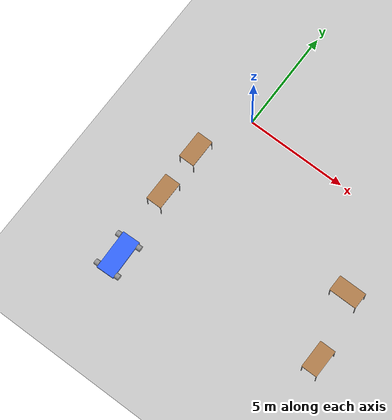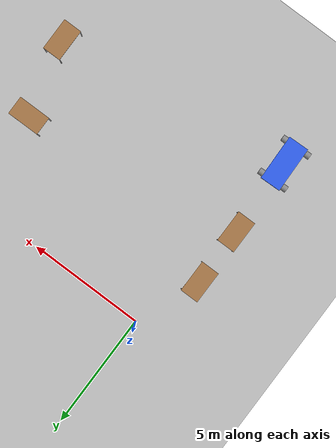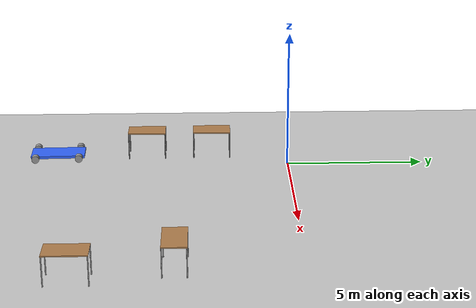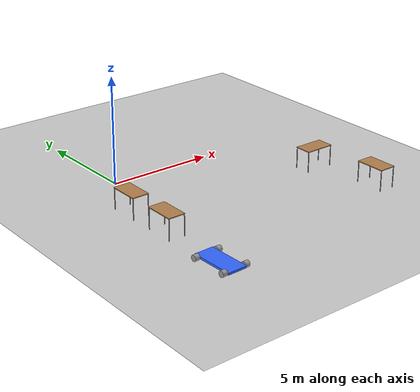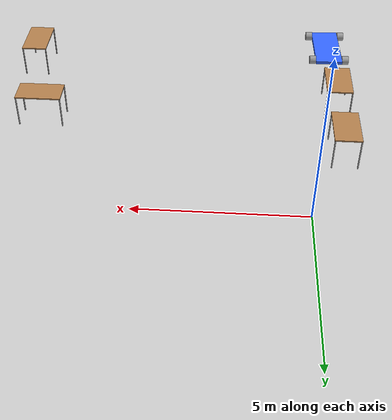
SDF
<sdf version="1.6">
 <world name="default">
  <model name="ground_plane">
   <static>1</static>
   <link name="link">
    <collision name="collision">
     <geometry><plane><normal>0 0 1</normal><size>100 100</size></plane></geometry>
     <surface><friction><ode><mu>100</mu><mu2>50</mu2></ode></friction></surface>
    </collision>
    <visual name="visual">
     <cast_shadows>0</cast_shadows>
     <geometry><plane><normal>0 0 1</normal><size>100 100</size></plane></geometry>
     <material>
      <script><uri>file://media/materials/scripts/gazebo.material</uri><name>Gazebo/Grey</name></script>
     </material>
    </visual>
   </link>
  </model>
  <model name="table_0_clone_0_clone_0_clone_0">
   <static>0</static>
   <link name="link">
    <collision name="surface">
     <pose>0 0 1 0 -0 0</pose>
     <geometry><box><size>1.5 0.8 0.03</size></box></geometry>
     <surface><friction><ode><mu>0.6</mu><mu2>0.6</mu2></ode></friction></surface>
    </collision>
    <visual name="visual1">
     <pose>0 0 1 0 -0 0</pose>
     <geometry><box><size>1.4 0.8 0.04</size></box></geometry>
     <material>
      <script><uri>file://media/materials/scripts/gazebo.material</uri><name>Gazebo/Wood</name></script>
     </material>
    </visual>
    <collision name="front_left_leg">
     <pose>0.68 0.38 0.5 0 -0 0</pose>
     <geometry><cylinder><radius>0.02</radius><length>1</length></cylinder></geometry>
    </collision>
    <visual name="front_left_leg">
     <pose>0.68 0.38 0.5 0 -0 0</pose>
     <geometry><cylinder><radius>0.02</radius><length>1</length></cylinder></geometry>
     <material>
      <script><uri>file://media/materials/scripts/gazebo.material</uri><name>Gazebo/Grey</name></script>
     </material>
    </visual>
    <collision name="front_right_leg">
     <pose>0.68 -0.38 0.5 0 -0 0</pose>
     <geometry><cylinder><radius>0.02</radius><length>1</length></cylinder></geometry>
    </collision>
    <visual name="front_right_leg">
     <pose>0.68 -0.38 0.5 0 -0 0</pose>
     <geometry><cylinder><radius>0.02</radius><length>1</length></cylinder></geometry>
     <material>
      <script><uri>file://media/materials/scripts/gazebo.material</uri><name>Gazebo/Grey</name></script>
     </material>
    </visual>
    <collision name="back_right_leg">
     <pose>-0.68 -0.38 0.5 0 -0 0</pose>
     <geometry><cylinder><radius>0.02</radius><length>1</length></cylinder></geometry>
    </collision>
    <visual name="back_right_leg">
     <pose>-0.68 -0.38 0.5 0 -0 0</pose>
     <geometry><cylinder><radius>0.02</radius><length>1</length></cylinder></geometry>
     <material>
      <script><uri>file://media/materials/scripts/gazebo.material</uri><name>Gazebo/Grey</name></script>
     </material>
    </visual>
    <collision name="back_left_leg">
     <pose>-0.68 0.38 0.5 0 -0 0</pose>
     <geometry><cylinder><radius>0.02</radius><length>1</length></cylinder></geometry>
    </collision>
    <visual name="back_left_leg">
     <pose>-0.68 0.38 0.5 0 -0 0</pose>
     <geometry><cylinder><radius>0.02</radius><length>1</length></cylinder></geometry>
     <material>
      <script><uri>file://media/materials/scripts/gazebo.material</uri><name>Gazebo/Grey</name></script>
     </material>
    </visual>
    <inertial>
     <inertia><ixx>1</ixx><ixy>0</ixy><ixz>0</ixz><iyy>1</iyy><iyz>0</iyz><izz>1</izz></inertia>
     <mass>1</mass>
    </inertial>
   </link>
   <pose>8.979 -7.20182 -7e-06 3e-06 2e-06 1.57</pose>
  </model>
  <model name="table_3_clone_clone_clone_0">
   <static>0</static>
   <link name="link">
    <collision name="surface">
     <pose>0 0 1 0 -0 0</pose>
     <geometry><box><size>1.5 0.8 0.03</size></box></geometry>
     <surface><friction><ode><mu>0.6</mu><mu2>0.6</mu2></ode></friction></surface>
    </collision>
    <visual name="visual1">
     <pose>0 0 1 0 -0 0</pose>
     <geometry><box><size>1.4 0.8 0.04</size></box></geometry>
     <material>
      <script><uri>file://media/materials/scripts/gazebo.material</uri><name>Gazebo/Wood</name></script>
     </material>
    </visual>
    <collision name="front_left_leg">
     <pose>0.68 0.38 0.5 0 -0 0</pose>
     <geometry><cylinder><radius>0.02</radius><length>1</length></cylinder></geometry>
    </collision>
    <visual name="front_left_leg">
     <pose>0.68 0.38 0.5 0 -0 0</pose>
     <geometry><cylinder><radius>0.02</radius><length>1</length></cylinder></geometry>
     <material>
      <script><uri>file://media/materials/scripts/gazebo.material</uri><name>Gazebo/Grey</name></script>
     </material>
    </visual>
    <collision name="front_right_leg">
     <pose>0.68 -0.38 0.5 0 -0 0</pose>
     <geometry><cylinder><radius>0.02</radius><length>1</length></cylinder></geometry>
    </collision>
    <visual name="front_right_leg">
     <pose>0.68 -0.38 0.5 0 -0 0</pose>
     <geometry><cylinder><radius>0.02</radius><length>1</length></cylinder></geometry>
     <material>
      <script><uri>file://media/materials/scripts/gazebo.material</uri><name>Gazebo/Grey</name></script>
     </material>
    </visual>
    <collision name="back_right_leg">
     <pose>-0.68 -0.38 0.5 0 -0 0</pose>
     <geometry><cylinder><radius>0.02</radius><length>1</length></cylinder></geometry>
    </collision>
    <visual name="back_right_leg">
     <pose>-0.68 -0.38 0.5 0 -0 0</pose>
     <geometry><cylinder><radius>0.02</radius><length>1</length></cylinder></geometry>
     <material>
      <script><uri>file://media/materials/scripts/gazebo.material</uri><name>Gazebo/Grey</name></script>
     </material>
    </visual>
    <collision name="back_left_leg">
     <pose>-0.68 0.38 0.5 0 -0 0</pose>
     <geometry><cylinder><radius>0.02</radius><length>1</length></cylinder></geometry>
    </collision>
    <visual name="back_left_leg">
     <pose>-0.68 0.38 0.5 0 -0 0</pose>
     <geometry><cylinder><radius>0.02</radius><length>1</length></cylinder></geometry>
     <material>
      <script><uri>file://media/materials/scripts/gazebo.material</uri><name>Gazebo/Grey</name></script>
     </material>
    </visual>
    <inertial>
     <inertia><ixx>1</ixx><ixy>0</ixy><ixz>0</ixz><iyy>1</iyy><iyz>0</iyz><izz>1</izz></inertia>
     <mass>1</mass>
    </inertial>
   </link>
   <pose>-1.06808 -2.82716 -1e-06 -0 -1e-06 1.57001</pose>
  </model>
  <model name="table_3_clone_clone_clone_0_clone">
   <static>0</static>
   <link name="link">
    <collision name="surface">
     <pose>0 0 1 0 -0 0</pose>
     <geometry><box><size>1.5 0.8 0.03</size></box></geometry>
     <surface><friction><ode><mu>0.6</mu><mu2>0.6</mu2></ode></friction></surface>
    </collision>
    <visual name="visual1">
     <pose>0 0 1 0 -0 0</pose>
     <geometry><box><size>1.4 0.8 0.04</size></box></geometry>
     <material>
      <script><uri>file://media/materials/scripts/gazebo.material</uri><name>Gazebo/Wood</name></script>
     </material>
    </visual>
    <collision name="front_left_leg">
     <pose>0.68 0.38 0.5 0 -0 0</pose>
     <geometry><cylinder><radius>0.02</radius><length>1</length></cylinder></geometry>
    </collision>
    <visual name="front_left_leg">
     <pose>0.68 0.38 0.5 0 -0 0</pose>
     <geometry><cylinder><radius>0.02</radius><length>1</length></cylinder></geometry>
     <material>
      <script><uri>file://media/materials/scripts/gazebo.material</uri><name>Gazebo/Grey</name></script>
     </material>
    </visual>
    <collision name="front_right_leg">
     <pose>0.68 -0.38 0.5 0 -0 0</pose>
     <geometry><cylinder><radius>0.02</radius><length>1</length></cylinder></geometry>
    </collision>
    <visual name="front_right_leg">
     <pose>0.68 -0.38 0.5 0 -0 0</pose>
     <geometry><cylinder><radius>0.02</radius><length>1</length></cylinder></geometry>
     <material>
      <script><uri>file://media/materials/scripts/gazebo.material</uri><name>Gazebo/Grey</name></script>
     </material>
    </visual>
    <collision name="back_right_leg">
     <pose>-0.68 -0.38 0.5 0 -0 0</pose>
     <geometry><cylinder><radius>0.02</radius><length>1</length></cylinder></geometry>
    </collision>
    <visual name="back_right_leg">
     <pose>-0.68 -0.38 0.5 0 -0 0</pose>
     <geometry><cylinder><radius>0.02</radius><length>1</length></cylinder></geometry>
     <material>
      <script><uri>file://media/materials/scripts/gazebo.material</uri><name>Gazebo/Grey</name></script>
     </material>
    </visual>
    <collision name="back_left_leg">
     <pose>-0.68 0.38 0.5 0 -0 0</pose>
     <geometry><cylinder><radius>0.02</radius><length>1</length></cylinder></geometry>
    </collision>
    <visual name="back_left_leg">
     <pose>-0.68 0.38 0.5 0 -0 0</pose>
     <geometry><cylinder><radius>0.02</radius><length>1</length></cylinder></geometry>
     <material>
      <script><uri>file://media/materials/scripts/gazebo.material</uri><name>Gazebo/Grey</name></script>
     </material>
    </visual>
    <inertial>
     <inertia><ixx>1</ixx><ixy>0</ixy><ixz>0</ixz><iyy>1</iyy><iyz>0</iyz><izz>1</izz></inertia>
     <mass>1</mass>
    </inertial>
   </link>
   <pose>-1.03399 -5.26338 -1e-06 -0 -1e-06 1.57001</pose>
  </model>
  <model name="table_1_clone_0">
   <static>0</static>
   <link name="link">
    <collision name="surface">
     <pose>0 0 1 0 -0 0</pose>
     <geometry><box><size>1.5 0.8 0.03</size></box></geometry>
     <surface><friction><ode><mu>0.6</mu><mu2>0.6</mu2></ode></friction></surface>
    </collision>
    <visual name="visual1">
     <pose>0 0 1 0 -0 0</pose>
     <geometry><box><size>1.4 0.8 0.04</size></box></geometry>
     <material>
      <script><uri>file://media/materials/scripts/gazebo.material</uri><name>Gazebo/Wood</name></script>
     </material>
    </visual>
    <collision name="front_left_leg">
     <pose>0.68 0.38 0.5 0 -0 0</pose>
     <geometry><cylinder><radius>0.02</radius><length>1</length></cylinder></geometry>
    </collision>
    <visual name="front_left_leg">
     <pose>0.68 0.38 0.5 0 -0 0</pose>
     <geometry><cylinder><radius>0.02</radius><length>1</length></cylinder></geometry>
     <material>
      <script><uri>file://media/materials/scripts/gazebo.material</uri><name>Gazebo/Grey</name></script>
     </material>
    </visual>
    <collision name="front_right_leg">
     <pose>0.68 -0.38 0.5 0 -0 0</pose>
     <geometry><cylinder><radius>0.02</radius><length>1</length></cylinder></geometry>
    </collision>
    <visual name="front_right_leg">
     <pose>0.68 -0.38 0.5 0 -0 0</pose>
     <geometry><cylinder><radius>0.02</radius><length>1</length></cylinder></geometry>
     <material>
      <script><uri>file://media/materials/scripts/gazebo.material</uri><name>Gazebo/Grey</name></script>
     </material>
    </visual>
    <collision name="back_right_leg">
     <pose>-0.68 -0.38 0.5 0 -0 0</pose>
     <geometry><cylinder><radius>0.02</radius><length>1</length></cylinder></geometry>
    </collision>
    <visual name="back_right_leg">
     <pose>-0.68 -0.38 0.5 0 -0 0</pose>
     <geometry><cylinder><radius>0.02</radius><length>1</length></cylinder></geometry>
     <material>
      <script><uri>file://media/materials/scripts/gazebo.material</uri><name>Gazebo/Grey</name></script>
     </material>
    </visual>
    <collision name="back_left_leg">
     <pose>-0.68 0.38 0.5 0 -0 0</pose>
     <geometry><cylinder><radius>0.02</radius><length>1</length></cylinder></geometry>
    </collision>
    <visual name="back_left_leg">
     <pose>-0.68 0.38 0.5 0 -0 0</pose>
     <geometry><cylinder><radius>0.02</radius><length>1</length></cylinder></geometry>
     <material>
      <script><uri>file://media/materials/scripts/gazebo.material</uri><name>Gazebo/Grey</name></script>
     </material>
    </visual>
    <inertial>
     <inertia><ixx>1</ixx><ixy>0</ixy><ixz>0</ixz><iyy>1</iyy><iyz>0</iyz><izz>1</izz></inertia>
     <mass>1</mass>
    </inertial>
   </link>
   <pose>8.23817 -4.02749 -1e-06 0 1e-06 0</pose>
  </model>
  <model name="gokart_3">
   <link name="link_0">
    <pose>1e-06 -0.118472 -0 -0 -0 -0</pose>
    <inertial>
     <mass>1.59387</mass>
     <inertia>
      <ixx>0.470249</ixx>
      <ixy>0</ixy>
      <ixz>0</ixz>
      <iyy>0.265646</iyy>
      <iyz>0</iyz>
      <izz>0.470249</izz>
     </inertia>
    </inertial>
    <visual name="visual">
     <geometry><box><size>2 0.9 0.1</size></box></geometry>
     <material>
      <lighting>1</lighting>
      <script><uri>file://media/materials/scripts/gazebo.material</uri><name>Gazebo/Grey</name></script>
      <ambient>0.2 0.4 1 1</ambient>
      <diffuse>0.2 0.4 1 1</diffuse>
      <specular>0.01 0.01 0.01 1</specular>
      <emissive>0 0 0 1</emissive>
      <shader type="vertex"><normal_map>__default__</normal_map></shader>
     </material>
    </visual>
    <collision name="collision">
     <geometry><box><size>2 0.9 0.1</size></box></geometry>
     <surface>
      <friction>
       <ode><mu>1</mu><mu2>1</mu2><fdir1>0 0 0</fdir1><slip1>0</slip1><slip2>0</slip2></ode>
       <torsional>
        <coefficient>1</coefficient>
        <patch_radius>0</patch_radius>
        <surface_radius>0</surface_radius>
        <use_patch_radius>1</use_patch_radius>
        <ode><slip>0</slip></ode>
       </torsional>
      </friction>
      <bounce><restitution_coefficient>0</restitution_coefficient><threshold>1e+06</threshold></bounce>
      <contact>
       <collide_without_contact>0</collide_without_contact>
       <collide_without_contact_bitmask>1</collide_without_contact_bitmask>
       <collide_bitmask>1</collide_bitmask>
       <ode>
        <soft_cfm>0</soft_cfm>
        <soft_erp>0.2</soft_erp>
        <kp>1e+13</kp>
        <kd>1</kd>
        <max_vel>0.01</max_vel>
        <min_depth>0</min_depth>
       </ode>
       <bullet>
        <split_impulse>1</split_impulse>
        <split_impulse_penetration_threshold>-0.01</split_impulse_penetration_threshold>
        <soft_cfm>0</soft_cfm>
        <soft_erp>0.2</soft_erp>
        <kp>1e+13</kp>
        <kd>1</kd>
       </bullet>
      </contact>
     </surface>
    </collision>
   </link>
   <link name="link_1">
    <pose>-0.81362 -0.678506 9e-06 1.5707 -0 0</pose>
    <inertial>
     <mass>1</mass>
     <inertia><ixx>0.145833</ixx><ixy>0</ixy><ixz>0</ixz><iyy>0.145833</iyy><iyz>0</iyz><izz>0.125</izz></inertia>
    </inertial>
    <visual name="visual">
     <geometry><cylinder><radius>0.14</radius><length>0.22</length></cylinder></geometry>
     <material>
      <lighting>1</lighting>
      <script><uri>file://media/materials/scripts/gazebo.material</uri><name>Gazebo/Grey</name></script>
      <ambient>0.1 0.1 0.1 1</ambient>
      <diffuse>0.1 0.1 0.1 1</diffuse>
      <specular>0.01 0.01 0.01 1</specular>
      <emissive>0 0 0 1</emissive>
      <shader type="vertex"><normal_map>__default__</normal_map></shader>
     </material>
    </visual>
    <collision name="collision">
     <geometry><cylinder><radius>0.14</radius><length>0.22</length></cylinder></geometry>
     <surface>
      <friction>
       <ode><mu>1</mu><mu2>1</mu2><fdir1>0 0 0</fdir1><slip1>0</slip1><slip2>0</slip2></ode>
       <torsional>
        <coefficient>1</coefficient>
        <patch_radius>0</patch_radius>
        <surface_radius>0</surface_radius>
        <use_patch_radius>1</use_patch_radius>
        <ode><slip>0</slip></ode>
       </torsional>
      </friction>
      <bounce><restitution_coefficient>0</restitution_coefficient><threshold>1e+06</threshold></bounce>
      <contact>
       <collide_without_contact>0</collide_without_contact>
       <collide_without_contact_bitmask>1</collide_without_contact_bitmask>
       <collide_bitmask>1</collide_bitmask>
       <ode>
        <soft_cfm>0</soft_cfm>
        <soft_erp>0.2</soft_erp>
        <kp>1e+13</kp>
        <kd>1</kd>
        <max_vel>0.01</max_vel>
        <min_depth>0</min_depth>
       </ode>
       <bullet>
        <split_impulse>1</split_impulse>
        <split_impulse_penetration_threshold>-0.01</split_impulse_penetration_threshold>
        <soft_cfm>0</soft_cfm>
        <soft_erp>0.2</soft_erp>
        <kp>1e+13</kp>
        <kd>1</kd>
       </bullet>
      </contact>
     </surface>
    </collision>
   </link>
   <link name="link_1_clone">
    <pose>-0.813633 0.441545 0 1.5707 -0 0</pose>
    <inertial>
     <mass>1</mass>
     <inertia><ixx>0.145833</ixx><ixy>0</ixy><ixz>0</ixz><iyy>0.145833</iyy><iyz>0</iyz><izz>0.125</izz></inertia>
    </inertial>
    <visual name="visual">
     <geometry><cylinder><radius>0.14</radius><length>0.22</length></cylinder></geometry>
     <material>
      <lighting>1</lighting>
      <script><uri>file://media/materials/scripts/gazebo.material</uri><name>Gazebo/Grey</name></script>
      <ambient>0.1 0.1 0.1 1</ambient>
      <diffuse>0.1 0.1 0.1 1</diffuse>
      <specular>0.01 0.01 0.01 1</specular>
      <emissive>0 0 0 1</emissive>
      <shader type="vertex"><normal_map>__default__</normal_map></shader>
     </material>
    </visual>
    <collision name="collision">
     <geometry><cylinder><radius>0.14</radius><length>0.22</length></cylinder></geometry>
     <surface>
      <friction>
       <ode><mu>1</mu><mu2>1</mu2><fdir1>0 0 0</fdir1><slip1>0</slip1><slip2>0</slip2></ode>
       <torsional>
        <coefficient>1</coefficient>
        <patch_radius>0</patch_radius>
        <surface_radius>0</surface_radius>
        <use_patch_radius>1</use_patch_radius>
        <ode><slip>0</slip></ode>
       </torsional>
      </friction>
      <bounce><restitution_coefficient>0</restitution_coefficient><threshold>1e+06</threshold></bounce>
      <contact>
       <collide_without_contact>0</collide_without_contact>
       <collide_without_contact_bitmask>1</collide_without_contact_bitmask>
       <collide_bitmask>1</collide_bitmask>
       <ode>
        <soft_cfm>0</soft_cfm>
        <soft_erp>0.2</soft_erp>
        <kp>1e+13</kp>
        <kd>1</kd>
        <max_vel>0.01</max_vel>
        <min_depth>0</min_depth>
       </ode>
       <bullet>
        <split_impulse>1</split_impulse>
        <split_impulse_penetration_threshold>-0.01</split_impulse_penetration_threshold>
        <soft_cfm>0</soft_cfm>
        <soft_erp>0.2</soft_erp>
        <kp>1e+13</kp>
        <kd>1</kd>
       </bullet>
      </contact>
     </surface>
    </collision>
   </link>
   <link name="link_1_clone_0">
    <pose>0.8 -0.678488 6e-06 1.5707 1.1e-05 1.1e-05</pose>
    <inertial>
     <mass>1</mass>
     <inertia><ixx>0.145833</ixx><ixy>0</ixy><ixz>0</ixz><iyy>0.145833</iyy><iyz>0</iyz><izz>0.125</izz></inertia>
    </inertial>
    <visual name="visual">
     <geometry><cylinder><radius>0.14</radius><length>0.22</length></cylinder></geometry>
     <material>
      <lighting>1</lighting>
      <script><uri>file://media/materials/scripts/gazebo.material</uri><name>Gazebo/Grey</name></script>
      <ambient>0.1 0.1 0.1 1</ambient>
      <diffuse>0.1 0.1 0.1 1</diffuse>
      <specular>0.01 0.01 0.01 1</specular>
      <emissive>0 0 0 1</emissive>
      <shader type="vertex"><normal_map>__default__</normal_map></shader>
     </material>
    </visual>
    <collision name="collision">
     <geometry><cylinder><radius>0.14</radius><length>0.22</length></cylinder></geometry>
     <surface>
      <friction>
       <ode><mu>1</mu><mu2>1</mu2><fdir1>0 0 0</fdir1><slip1>0</slip1><slip2>0</slip2></ode>
       <torsional>
        <coefficient>1</coefficient>
        <patch_radius>0</patch_radius>
        <surface_radius>0</surface_radius>
        <use_patch_radius>1</use_patch_radius>
        <ode><slip>0</slip></ode>
       </torsional>
      </friction>
      <bounce><restitution_coefficient>0</restitution_coefficient><threshold>1e+06</threshold></bounce>
      <contact>
       <collide_without_contact>0</collide_without_contact>
       <collide_without_contact_bitmask>1</collide_without_contact_bitmask>
       <collide_bitmask>1</collide_bitmask>
       <ode>
        <soft_cfm>0</soft_cfm>
        <soft_erp>0.2</soft_erp>
        <kp>1e+13</kp>
        <kd>1</kd>
        <max_vel>0.01</max_vel>
        <min_depth>0</min_depth>
       </ode>
       <bullet>
        <split_impulse>1</split_impulse>
        <split_impulse_penetration_threshold>-0.01</split_impulse_penetration_threshold>
        <soft_cfm>0</soft_cfm>
        <soft_erp>0.2</soft_erp>
        <kp>1e+13</kp>
        <kd>1</kd>
       </bullet>
      </contact>
     </surface>
    </collision>
   </link>
   <link name="link_1_clone_1">
    <pose>0.800005 0.441562 -2e-06 1.5707 1.1e-05 1.1e-05</pose>
    <inertial>
     <mass>1</mass>
     <inertia><ixx>0.145833</ixx><ixy>0</ixy><ixz>0</ixz><iyy>0.145833</iyy><iyz>0</iyz><izz>0.125</izz></inertia>
    </inertial>
    <visual name="visual">
     <geometry><cylinder><radius>0.14</radius><length>0.22</length></cylinder></geometry>
     <material>
      <lighting>1</lighting>
      <script><uri>file://media/materials/scripts/gazebo.material</uri><name>Gazebo/Grey</name></script>
      <ambient>0.1 0.1 0.1 1</ambient>
      <diffuse>0.1 0.1 0.1 1</diffuse>
      <specular>0.01 0.01 0.01 1</specular>
      <emissive>0 0 0 1</emissive>
      <shader type="vertex"><normal_map>__default__</normal_map></shader>
     </material>
    </visual>
    <collision name="collision">
     <geometry><cylinder><radius>0.14</radius><length>0.22</length></cylinder></geometry>
     <surface>
      <friction>
       <ode><mu>1</mu><mu2>1</mu2><fdir1>0 0 0</fdir1><slip1>0</slip1><slip2>0</slip2></ode>
       <torsional>
        <coefficient>1</coefficient>
        <patch_radius>0</patch_radius>
        <surface_radius>0</surface_radius>
        <use_patch_radius>1</use_patch_radius>
        <ode><slip>0</slip></ode>
       </torsional>
      </friction>
      <bounce><restitution_coefficient>0</restitution_coefficient><threshold>1e+06</threshold></bounce>
      <contact>
       <collide_without_contact>0</collide_without_contact>
       <collide_without_contact_bitmask>1</collide_without_contact_bitmask>
       <collide_bitmask>1</collide_bitmask>
       <ode>
        <soft_cfm>0</soft_cfm>
        <soft_erp>0.2</soft_erp>
        <kp>1e+13</kp>
        <kd>1</kd>
        <max_vel>0.01</max_vel>
        <min_depth>0</min_depth>
       </ode>
       <bullet>
        <split_impulse>1</split_impulse>
        <split_impulse_penetration_threshold>-0.01</split_impulse_penetration_threshold>
        <soft_cfm>0</soft_cfm>
        <soft_erp>0.2</soft_erp>
        <kp>1e+13</kp>
        <kd>1</kd>
       </bullet>
      </contact>
     </surface>
    </collision>
   </link>
   <joint name="link_0_JOINT_0_0" type="revolute">
    <parent>link_0</parent>
    <child>link_1_clone_0</child>
    <axis>
     <xyz>0 0 1</xyz>
     <use_parent_model_frame>0</use_parent_model_frame>
     <limit>
      <lower>-1.79769e+308</lower>
      <upper>1.79769e+308</upper>
      <effort>-1</effort>
      <velocity>-1</velocity>
     </limit>
     <dynamics>
      <spring_reference>0</spring_reference>
      <spring_stiffness>0</spring_stiffness>
      <damping>0</damping>
      <friction>0</friction>
     </dynamics>
    </axis>
    <physics>
     <ode><limit><cfm>0</cfm><erp>0.2</erp></limit><suspension><cfm>0</cfm><erp>0.2</erp></suspension></ode>
    </physics>
   </joint>
   <joint name="link_0_JOINT_0" type="revolute">
    <parent>link_0</parent>
    <child>link_1</child>
    <axis>
     <xyz>0 0 1</xyz>
     <use_parent_model_frame>0</use_parent_model_frame>
     <limit>
      <lower>-1.79769e+308</lower>
      <upper>1.79769e+308</upper>
      <effort>-1</effort>
      <velocity>-1</velocity>
     </limit>
     <dynamics>
      <spring_reference>0</spring_reference>
      <spring_stiffness>0</spring_stiffness>
      <damping>0</damping>
      <friction>0</friction>
     </dynamics>
    </axis>
    <physics>
     <ode><limit><cfm>0</cfm><erp>0.2</erp></limit><suspension><cfm>0</cfm><erp>0.2</erp></suspension></ode>
    </physics>
   </joint>
   <joint name="link_0_JOINT_1_0" type="revolute">
    <parent>link_0</parent>
    <child>link_1_clone_1</child>
    <axis>
     <xyz>1 0 0</xyz>
     <use_parent_model_frame>0</use_parent_model_frame>
     <limit>
      <lower>-1.79769e+308</lower>
      <upper>1.79769e+308</upper>
      <effort>-1</effort>
      <velocity>-1</velocity>
     </limit>
     <dynamics>
      <spring_reference>0</spring_reference>
      <spring_stiffness>0</spring_stiffness>
      <damping>0</damping>
      <friction>0</friction>
     </dynamics>
    </axis>
    <physics>
     <ode><limit><cfm>0</cfm><erp>0.2</erp></limit><suspension><cfm>0</cfm><erp>0.2</erp></suspension></ode>
    </physics>
   </joint>
   <joint name="link_0_JOINT_1" type="revolute">
    <parent>link_0</parent>
    <child>link_1_clone</child>
    <axis>
     <xyz>0 0 1</xyz>
     <use_parent_model_frame>0</use_parent_model_frame>
     <limit>
      <lower>-1.79769e+308</lower>
      <upper>1.79769e+308</upper>
      <effort>-1</effort>
      <velocity>-1</velocity>
     </limit>
     <dynamics>
      <spring_reference>0</spring_reference>
      <spring_stiffness>0</spring_stiffness>
      <damping>0</damping>
      <friction>0</friction>
     </dynamics>
    </axis>
    <physics>
     <ode><limit><cfm>0</cfm><erp>0.2</erp></limit><suspension><cfm>0</cfm><erp>0.2</erp></suspension></ode>
    </physics>
   </joint>
   <static>0</static>
   <pose>-1.10695 -8.64561 0.140005 6e-06 2e-06 1.59984</pose>
  </model>
 </world>
</sdf>
